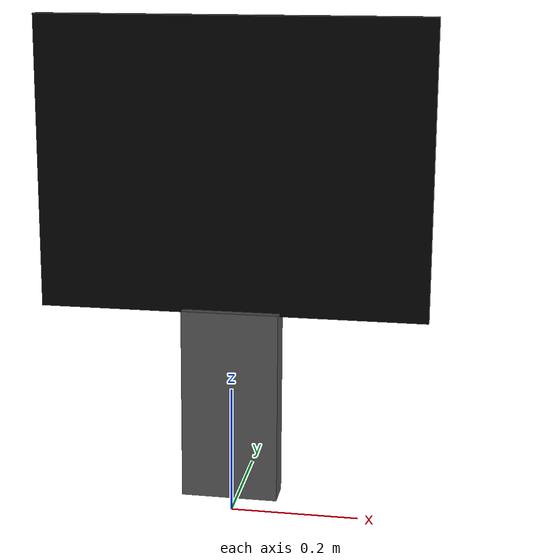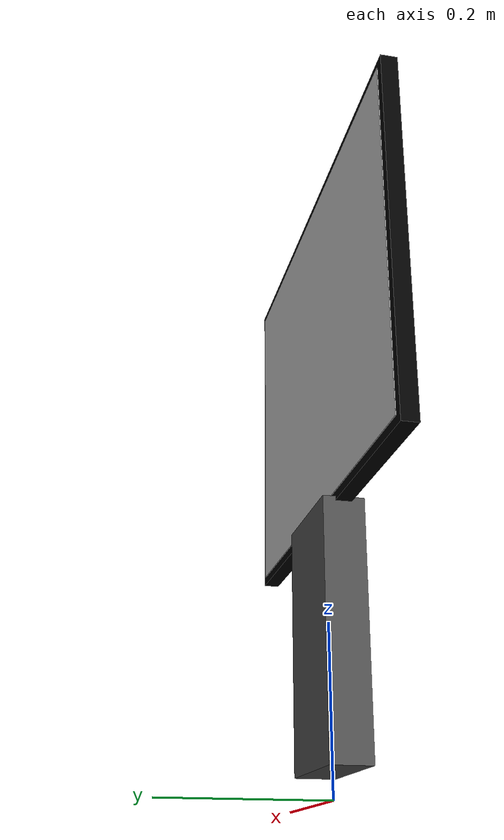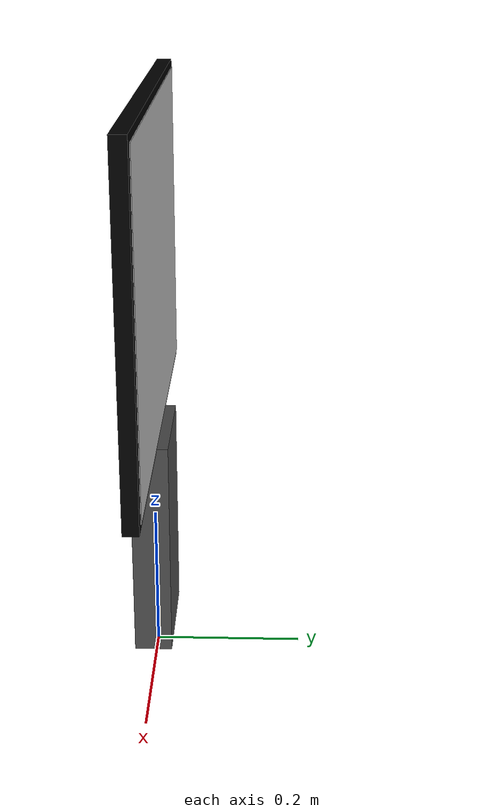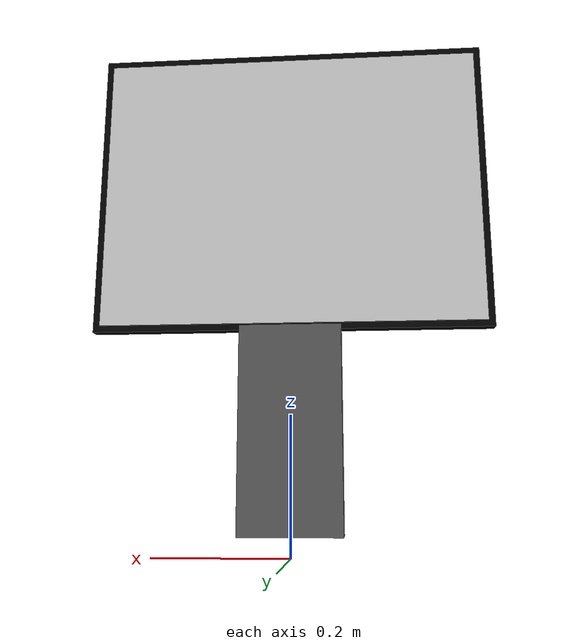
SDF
<?xml version="1.0" ?>
<sdf version="1.7">
  <model name="Stop">
    <static>true</static>

    <!-- 牌面 -->
    <link name="link">

	  <!-- 黑色底板 -->
	  <visual name="board_base">
		<pose>0 0 0.55 0 0 0</pose>
		<geometry>
		  <box>
		    <size>0.60 0.02 0.45</size> <!-- 厚度稍微有 -->
		  </box>
		</geometry>
		<material>
		  <ambient>0 0 0 1</ambient>
		  <diffuse>0 0 0 1</diffuse>
		</material>
	  </visual>

	  <!-- 貼圖板（前面那層） -->
	  <visual name="board_texture">
		<!-- y +0.011 → 往外一點 -->
		<pose>0 0.011 0.55 0 0 0</pose>

		<geometry>
		  <box>
		    <size>0.58 0.001 0.43</size> <!-- 很薄 -->
		  </box>
		</geometry>

		<material>
		  <script>
		    <uri>model://stop/materials/scripts</uri>
		    <uri>model://stop/materials/textures</uri>
		    <name>Sign/Stop</name>
		  </script>
		</material>
	  </visual>

	  <!-- 支柱 -->
	  <visual name="pole_visual">
		<pose>0 0 0.18 0 0 0</pose>
		<geometry>
		  <box>
		    <size>0.15 0.05 0.30</size>
		  </box>
		</geometry>
		<material>
		  <ambient>0.3 0.3 0.3 1</ambient>
		  <diffuse>0.3 0.3 0.3 1</diffuse>
		</material>
	  </visual>

	</link>
  </model>
</sdf>
